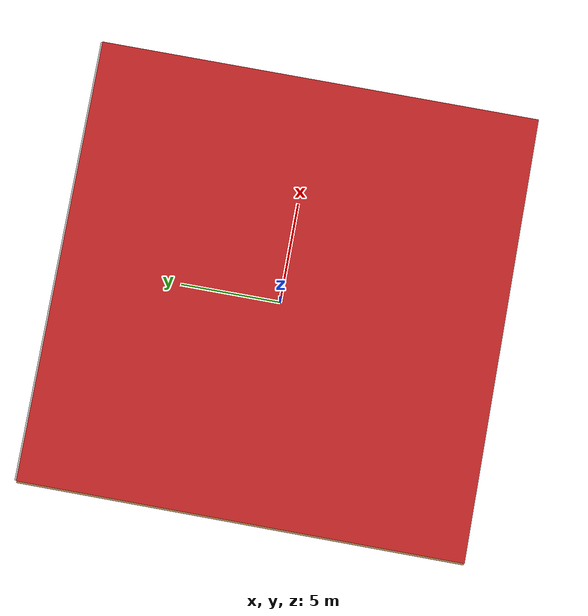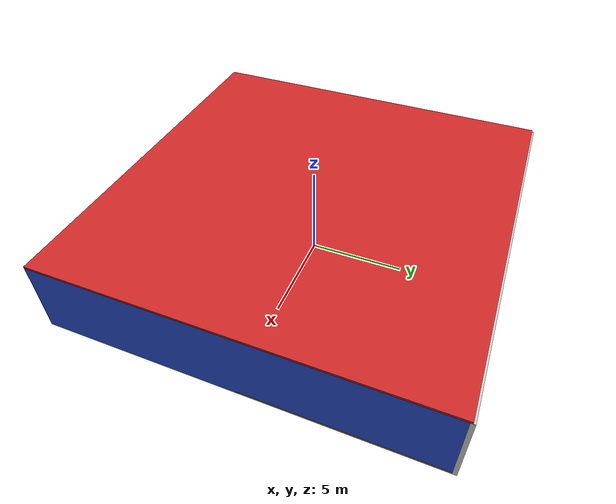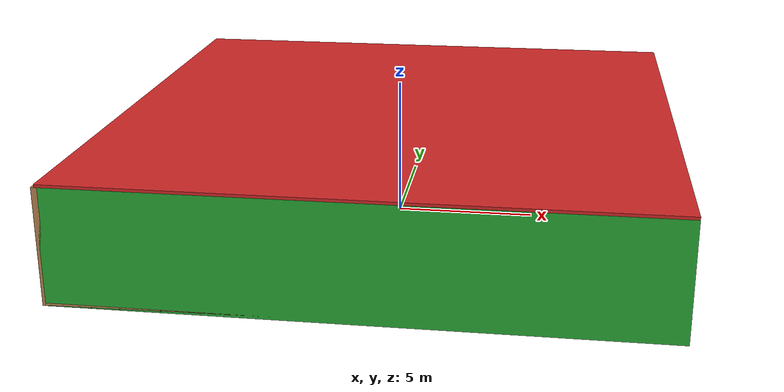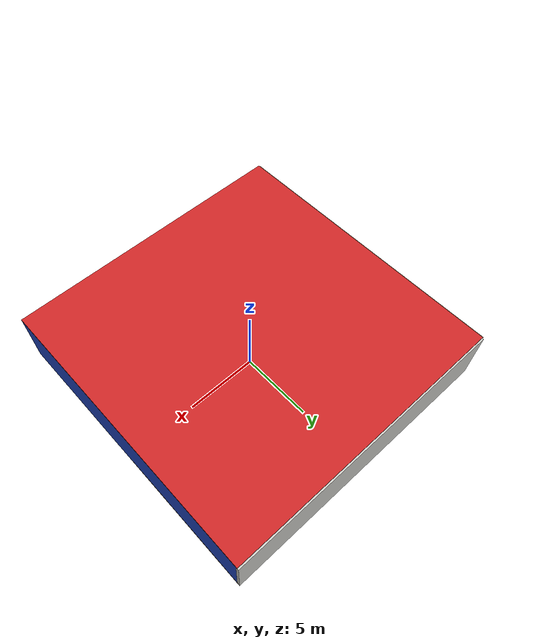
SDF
<sdf version="1.4">
 <world name="default">
  <physics type="ode">
   <max_step_size>0.001</max_step_size>
   <real_time_factor>1</real_time_factor>
   <real_time_update_rate>1000</real_time_update_rate>
   <gravity>0 0 -9.8</gravity>
  </physics>
  <scene><ambient>0.4 0.4 0.4 1</ambient><background>0.7 0.7 0.7 1</background><shadows>1</shadows></scene>
  <model name="Surrounding">
   <static>1</static>
   <link name="Ceiling">
    <collision name="Ceiling_Collision"><geometry><box><size>20 20 0.1</size></box></geometry></collision>
    <visual name="Ceiling_Visual">
     <geometry><box><size>20 20 0.1</size></box></geometry>
     <material>
      <script><uri>file://media/materials/scripts/gazebo.material</uri><name>Gazebo/RedBright</name></script>
     </material>
    </visual>
    <pose>0 0 4.05 0 0 0</pose>
   </link>
   <link name="Wall_South">
    <collision name="Wall_South_Collision">
     <geometry><box><size>20 0 4</size></box></geometry>
     <pose>0 0 2 0 -0 0</pose>
    </collision>
    <visual name="Wall_South_Visual">
     <pose>0 0 2 0 -0 0</pose>
     <geometry><box><size>20 0 4</size></box></geometry>
     <material>
      <script><uri>file://media/materials/scripts/gazebo.material</uri><name>Gazebo/GreenGlow</name></script>
     </material>
    </visual>
    <velocity_decay><linear>0</linear><angular>0</angular></velocity_decay>
    <pose>0 -10 0 0 -0 0</pose>
   </link>
   <link name="Wall_East">
    <collision name="Wall_21_Collision">
     <geometry><box><size>20 0 4</size></box></geometry>
     <pose>0 0 2 0 -0 0</pose>
    </collision>
    <visual name="Wall_21_Visual">
     <pose>0 0 2 0 -0 0</pose>
     <geometry><box><size>20 0 4</size></box></geometry>
     <material>
      <script><uri>file://media/materials/scripts/gazebo.material</uri><name>Gazebo/Blue</name></script>
     </material>
    </visual>
    <velocity_decay><linear>0</linear><angular>0</angular></velocity_decay>
    <pose>10 0 0 0 -0 1.5708</pose>
   </link>
   <link name="Wall_North">
    <collision name="Wall_22_Collision">
     <geometry><box><size>20 0.2 4</size></box></geometry>
     <pose>0 0 2 0 -0 0</pose>
    </collision>
    <visual name="Wall_22_Visual">
     <pose>0 0 2 0 -0 0</pose>
     <geometry><box><size>20 0.2 4</size></box></geometry>
     <material>
      <script><uri>file://media/materials/scripts/gazebo.material</uri><name>Gazebo/CeilingTiled</name></script>
     </material>
    </visual>
    <velocity_decay><linear>0</linear><angular>0</angular></velocity_decay>
    <pose>0 10 0 0 -0 0</pose>
   </link>
   <link name="Wall_West">
    <collision name="Wall_23_Collision">
     <geometry><box><size>20 0.2 4</size></box></geometry>
     <pose>0 0 2 0 -0 0</pose>
    </collision>
    <visual name="Wall_23_Visual">
     <pose>0 0 2 0 -0 0</pose>
     <geometry><box><size>20 0.2 4</size></box></geometry>
     <material>
      <script><uri>file://media/materials/scripts/gazebo.material</uri><name>Gazebo/Wood</name></script>
     </material>
    </visual>
    <velocity_decay><linear>0</linear><angular>0</angular></velocity_decay>
    <pose>-10 0 0 0 0 -1.5708</pose>
   </link>
   <link name="Ground_link">
    <collision name="collision">
     <pose>0 0 .05 0 -0 0</pose>
     <geometry><box><size>20 20 0.1</size></box></geometry>
    </collision>
    <visual name="visual">
     <pose>0 0 .05 0 -0 0</pose>
     <geometry><box><size>20 20 0.1</size></box></geometry>
     <material>
      <script><uri>file://media/materials/scripts/gazebo.material</uri><name>Gazebo/Wood</name></script>
     </material>
    </visual>
   </link>
   <static>1</static>
  </model>
  <spherical_coordinates>
   <surface_model>EARTH_WGS84</surface_model>
   <latitude_deg>0</latitude_deg>
   <longitude_deg>0</longitude_deg>
   <elevation>0</elevation>
   <heading_deg>0</heading_deg>
  </spherical_coordinates>
  <light name="lightball_0" type="diffuse">
   <diffuse>0.8 0.8 0.8 1</diffuse>
   <specular>0.2 0.2 0.2 1</specular>
   <attenuation>
    <range>100</range>
    <constant>0.7</constant>
    <linear>0.01</linear>
    <quadratic>0.001</quadratic>
   </attenuation>
   <direction>-0.5 0.1 -0.9</direction>
   <pose>4.53875497719 -1.4235948038 1.99735840621 0 0 0</pose>
  </light>
  <light name="lightball_1" type="diffuse">
   <diffuse>0.8 0.8 0.8 1</diffuse>
   <specular>0.2 0.2 0.2 1</specular>
   <attenuation>
    <range>100</range>
    <constant>0.7</constant>
    <linear>0.01</linear>
    <quadratic>0.001</quadratic>
   </attenuation>
   <direction>-0.5 0.1 -0.9</direction>
   <pose>3.54846006238 -3.46220799584 3.84398822171 0 0 0</pose>
  </light>
  <light name="lightball_2" type="diffuse">
   <diffuse>0.8 0.8 0.8 1</diffuse>
   <specular>0.2 0.2 0.2 1</specular>
   <attenuation>
    <range>100</range>
    <constant>0.7</constant>
    <linear>0.01</linear>
    <quadratic>0.001</quadratic>
   </attenuation>
   <direction>-0.5 0.1 -0.9</direction>
   <pose>-1.34077744805 9.36978421098 3.74435826245 0 0 0</pose>
  </light>
  <light name="lightball_3" type="diffuse">
   <diffuse>0.8 0.8 0.8 1</diffuse>
   <specular>0.2 0.2 0.2 1</specular>
   <attenuation>
    <range>100</range>
    <constant>0.7</constant>
    <linear>0.01</linear>
    <quadratic>0.001</quadratic>
   </attenuation>
   <direction>-0.5 0.1 -0.9</direction>
   <pose>-9.01485144188 8.39949624736 2.07612404784 0 0 0</pose>
  </light>
  <light name="lightball_4" type="diffuse">
   <diffuse>0.8 0.8 0.8 1</diffuse>
   <specular>0.2 0.2 0.2 1</specular>
   <attenuation>
    <range>100</range>
    <constant>0.7</constant>
    <linear>0.01</linear>
    <quadratic>0.001</quadratic>
   </attenuation>
   <direction>-0.5 0.1 -0.9</direction>
   <pose>-5.60245816035 2.69508813705 0.542305245801 0 0 0</pose>
  </light>
  <light name="lightball_5" type="diffuse">
   <diffuse>0.8 0.8 0.8 1</diffuse>
   <specular>0.2 0.2 0.2 1</specular>
   <attenuation>
    <range>100</range>
    <constant>0.7</constant>
    <linear>0.01</linear>
    <quadratic>0.001</quadratic>
   </attenuation>
   <direction>-0.5 0.1 -0.9</direction>
   <pose>-9.08479587113 -7.78376183666 2.24198532246 0 0 0</pose>
  </light>
  <light name="lightball_6" type="diffuse">
   <diffuse>0.8 0.8 0.8 1</diffuse>
   <specular>0.2 0.2 0.2 1</specular>
   <attenuation>
    <range>100</range>
    <constant>0.7</constant>
    <linear>0.01</linear>
    <quadratic>0.001</quadratic>
   </attenuation>
   <direction>-0.5 0.1 -0.9</direction>
   <pose>-5.81029001618 7.60461140914 3.53756879013 0 0 0</pose>
  </light>
  <light name="lightball_7" type="diffuse">
   <diffuse>0.8 0.8 0.8 1</diffuse>
   <specular>0.2 0.2 0.2 1</specular>
   <attenuation>
    <range>100</range>
    <constant>0.7</constant>
    <linear>0.01</linear>
    <quadratic>0.001</quadratic>
   </attenuation>
   <direction>-0.5 0.1 -0.9</direction>
   <pose>-7.35255622819 4.23463827079 2.58947748322 0 0 0</pose>
  </light>
  <include>
   <uri>model://construction_cone</uri>
   <pose>-7.55392034197 7.9107217981 0 0 0 1.24978272276</pose>
  </include>
  <include>
   <uri>model://robocup_3Dsim_goal</uri>
   <pose>-5.44180887895 6.82438532273 0 0 0 0.0448948866324</pose>
  </include>
  <include><uri>model://cabinet</uri><pose>2.64971363698 -3.98531982603 0 0 0 2.61646070227</pose></include>
  <include><uri>model://table</uri><pose>0.819767123782 0.753927460638 0 0 0 2.35865444424</pose></include>
  <include>
   <uri>model://robocup_3Dsim_goal</uri>
   <pose>3.63132068837 -7.63245933901 0 0 0 1.94314052997</pose>
  </include>
  <include>
   <uri>model://construction_cone</uri>
   <pose>5.11617000804 7.95371654245 0 0 0 2.39410545389</pose>
  </include>
  <include>
   <uri>model://textured_shapes</uri>
   <pose>8.40783230335 -6.85558503554 0 0 0 0.433674370086</pose>
  </include>
 </world>
</sdf>

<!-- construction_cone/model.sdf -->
<sdf version="1.5">
  <model name="Construction Cone">
    <link name="link">
      <collision name="collision">
        <geometry>
          <mesh>
            <scale>10 10 10</scale>
            <uri>file://isr-testbed/construction_cone/meshes/construction_cone.dae</uri>
          </mesh>
        </geometry>
      </collision>
      <visual name="visual">
        <geometry>
          <mesh>
            <scale>10 10 10</scale>
            <uri>file://isr-testbed/construction_cone/meshes/construction_cone.dae</uri>
          </mesh>
        </geometry>
      </visual>
    </link>
  </model>
</sdf>

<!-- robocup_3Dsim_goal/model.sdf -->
<sdf version="1.5">
  <model name="robocup_3d_goal">
    <static>true</static>
    <link name="left_post">
      <pose>0 1.05 0.45 0 0 0</pose>
      <collision name="collision">
        <geometry>
          <cylinder>
            <radius>0.05</radius>
            <length>0.9</length>
          </cylinder>
        </geometry>
      </collision>
      <visual name="visual">
        <geometry>
          <cylinder>
            <radius>0.05</radius>
            <length>0.9</length>
          </cylinder>
        </geometry>
        <material>
          <script>
            <uri>file://media/materials/scripts/gazebo.material</uri>
            <name>Gazebo/ZincYellow</name>
          </script>
        </material>
      </visual>
    </link>
    <link name="left_support_horiz_lower">
      <pose>0.30 1.05 0.01 0 0 0</pose>
      <collision name="collision">
        <geometry>
          <box>
            <size>0.50 0.02 0.02</size>
          </box>
        </geometry>
      </collision>
      <visual name="visual">
        <geometry>
          <box>
            <size>0.50 0.02 0.02</size>
          </box>
        </geometry>
        <material>
          <script>
            <uri>file://media/materials/scripts/gazebo.material</uri>
            <name>Gazebo/White</name>
          </script>
        </material>
      </visual>
    </link>
    <link name="left_support_horiz_upper">
      <pose>0.30 1.05 0.79 0 0 0</pose>
      <collision name="collision">
        <geometry>
          <box>
            <size>0.50 0.02 0.02</size>
          </box>
        </geometry>
      </collision>
      <visual name="visual">
        <geometry>
          <box>
            <size>0.50 0.02 0.02</size>
          </box>
        </geometry>
        <material>
          <script>
            <uri>file://media/materials/scripts/gazebo.material</uri>
            <name>Gazebo/White</name>
          </script>
        </material>
      </visual>
    </link>
    <link name="left_support_vertical">
      <pose>0.56 1.05 0.4 0 1.5708 0</pose>
      <collision name="collision">
        <geometry>
          <box>
            <size>0.80 0.02 0.02</size>
          </box>
        </geometry>
      </collision>
      <visual name="visual">
        <geometry>
          <box>
            <size>0.80 0.02 0.02</size>
          </box>
        </geometry>
        <material>
          <script>
            <uri>file://media/materials/scripts/gazebo.material</uri>
            <name>Gazebo/White</name>
          </script>
        </material>
      </visual>
    </link>
    <link name="right_support_horiz_lower">
      <pose>0.30 -1.05 0.01 0 0 0</pose>
      <collision name="collision">
        <geometry>
          <box>
            <size>0.50 0.02 0.02</size>
          </box>
        </geometry>
      </collision>
      <visual name="visual">
        <geometry>
          <box>
            <size>0.50 0.02 0.02</size>
          </box>
        </geometry>
        <material>
          <script>
            <uri>file://media/materials/scripts/gazebo.material</uri>
            <name>Gazebo/White</name>
          </script>
        </material>
      </visual>
    </link>
    <link name="right_support_horiz_upper">
      <pose>0.30 -1.05 0.79 0 0 0</pose>
      <collision name="collision">
        <geometry>
          <box>
            <size>0.50 0.02 0.02</size>
          </box>
        </geometry>
      </collision>
      <visual name="visual">
        <geometry>
          <box>
            <size>0.50 0.02 0.02</size>
          </box>
        </geometry>
        <material>
          <script>
            <uri>file://media/materials/scripts/gazebo.material</uri>
            <name>Gazebo/White</name>
          </script>
        </material>
      </visual>
    </link>
    <link name="right_support_vertical">
      <pose>0.56 -1.05 0.4 0 1.5708 0</pose>
      <collision name="collision">
        <geometry>
          <box>
            <size>0.80 0.02 0.02</size>
          </box>
        </geometry>
      </collision>
      <visual name="visual">
        <geometry>
          <box>
            <size>0.80 0.02 0.02</size>
          </box>
        </geometry>
        <material>
          <script>
            <uri>file://media/materials/scripts/gazebo.material</uri>
            <name>Gazebo/White</name>
          </script>
        </material>
      </visual>
    </link>
    <link name="center_support_horiz_lower">
      <pose>0.56 0 0.01 0 1.5708 0</pose>
      <collision name="collision">
        <geometry>
          <box>
            <size>0.02 2.08 0.02</size>
          </box>
        </geometry>
      </collision>
      <visual name="visual">
        <geometry>
          <box>
            <size>0.02 2.08 0.02</size>
          </box>
        </geometry>
        <material>
          <script>
            <uri>file://media/materials/scripts/gazebo.material</uri>
            <name>Gazebo/White</name>
          </script>
        </material>
      </visual>
    </link>
    <link name="center_support_horiz_upper">
      <pose>0.56 0 0.79 0 1.5708 0</pose>
      <collision name="collision">
        <geometry>
          <box>
            <size>0.02 2.08 0.02</size>
          </box>
        </geometry>
      </collision>
      <visual name="visual">
        <geometry>
          <box>
            <size>0.02 2.08 0.02</size>
          </box>
        </geometry>
        <material>
          <script>
            <uri>file://media/materials/scripts/gazebo.material</uri>
            <name>Gazebo/White</name>
          </script>
        </material>
      </visual>
    </link>
    <link name="right_post">
      <pose>0 -1.05 0.45 0 0 0</pose>
      <collision name="collision">
        <geometry>
          <cylinder>
            <radius>0.05</radius>
            <length>0.9</length>
          </cylinder>
        </geometry>
      </collision>
      <visual name="visual">
        <geometry>
          <cylinder>
            <radius>0.05</radius>
            <length>0.9</length>
          </cylinder>
        </geometry>
        <material>
          <script>
            <uri>file://media/materials/scripts/gazebo.material</uri>
            <name>Gazebo/ZincYellow</name>
          </script>
        </material>
      </visual>
    </link>
    <link name="crossbar">
      <pose>0 0 0.85 1.57 1.57 0</pose>
      <collision name="collision">
        <geometry>
          <cylinder>
            <radius>0.05</radius>
            <length>2.0</length>
          </cylinder>
        </geometry>
      </collision>
      <visual name="visual">
        <geometry>
          <cylinder>
            <radius>0.05</radius>
            <length>2.0</length>
          </cylinder>
        </geometry>
        <material>
          <script>
            <uri>file://media/materials/scripts/gazebo.material</uri>
            <name>Gazebo/ZincYellow</name>
          </script>
        </material>
      </visual>
    </link>
    <link name="center_net">
      <pose>0.56 0 0.40 0 0 0</pose>
      <collision name="collision">
        <geometry>
          <box>
            <size>0.01 2.1 0.80</size>
          </box>
        </geometry>
      </collision>
      <visual name="visual">
        <geometry>
          <box>
            <size>0.01 2.1 0.80</size>
          </box>
        </geometry>
        <material>
          <script>
            <uri>model://../model_source/models/robocup09_spl_field/materials/scripts/</uri>
            <uri>model://../model_source/models/robocup09_spl_field/materials/textures/</uri>
            <name>RoboCup/Net</name>
          </script>
        </material>
      </visual>
    </link>
    <link name="left_net">
      <pose>0.30 1.05 0.40 0 0 0</pose>
      <collision name="collision">
        <geometry>
          <box>
            <size>0.50 0.01 0.76</size>
          </box>
        </geometry>
      </collision>
      <visual name="visual">
        <geometry>
          <box>
            <size>0.50 0.01 0.76</size>
          </box>
        </geometry>
        <material>
          <script>
            <uri>model://../model_source/models/robocup09_spl_field/materials/scripts/</uri>
            <uri>model://../model_source/models/robocup09_spl_field/materials/textures/</uri>
            <name>RoboCup/Net</name>
          </script>
        </material>
      </visual>
    </link>
    <link name="right_net">
      <pose>0.30 -1.05 0.40 0 0 0</pose>
      <collision name="collision">
        <geometry>
          <box>
            <size>0.50 0.01 0.76</size>
          </box>
        </geometry>
      </collision>
      <visual name="visual">
        <geometry>
          <box>
            <size>0.50 0.01 0.76</size>
          </box>
        </geometry>
        <material>
          <script>
            <uri>model://../model_source/models/robocup09_spl_field/materials/scripts/</uri>
            <uri>model://../model_source/models/robocup09_spl_field/materials/textures/</uri>
            <name>RoboCup/Net</name>
          </script>
        </material>
      </visual>
    </link>
  </model>
</sdf>

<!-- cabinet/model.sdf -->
<sdf version="1.5">
  <model name="cabinet">
    <static>true</static>
    <link name="cabinet_bottom_plate">
      <inertial>
        <pose>0 0 -1 0 0 0</pose>
        <inertia>
          <ixx>2.050000</ixx>
          <ixy>0</ixy>
          <ixz>0</ixz>
          <iyy>2.050000</iyy>
          <iyz>0</iyz>
          <izz>2.050000</izz>
        </inertia>
        <mass>25.000000</mass>
      </inertial>
      <collision name="cabinet_bottom_plate_geom">
        <pose>0 0 0.010000 0 0 0</pose>
        <geometry>
          <box>
            <size>0.450000 0.450000 0.020000</size>
          </box>
        </geometry>
      </collision>
      <visual name="cabinet_bottom_plate_geom_visual">
        <pose>0 0 0.010000 0 0 0</pose>
        <geometry>
          <box>
            <size>0.450000 0.450000 0.020000</size>
          </box>
        </geometry>
        <material>
          <script>
            <uri>model://media/materials/scripts/gazebo.material</uri>
            <name>Gazebo/Wood</name>
          </script>
        </material>
      </visual>
      <collision name="cabinet_bottom_plate_geom_cabinet_back_plate">
        <pose>0.235000 0 0.510000 0 0 0</pose>
        <geometry>
          <box>
            <size>0.020000 0.450000 1.020000</size>
          </box>
        </geometry>
      </collision>
      <visual name="cabinet_bottom_plate_geom_cabinet_back_plate_visual">
        <pose>0.235000 0 0.510000 0 0 0</pose>
        <geometry>
          <box>
            <size>0.020000 0.450000 1.020000</size>
          </box>
        </geometry>
        <material>
          <script>
            <uri>model://media/materials/scripts/gazebo.material</uri>
            <name>Gazebo/Wood</name>
          </script>
        </material>
      </visual>
      <collision name="cabinet_bottom_plate_geom_cabinet_left_plate">
        <pose>0 0.235000 0.510000 0 0 0</pose>
        <geometry>
          <box>
            <size>0.450000 0.020000 1.020000</size>
          </box>
        </geometry>
      </collision>
      <visual name="cabinet_bottom_plate_geom_cabinet_left_plate_visual">
        <pose>0 0.235000 0.510000 0 0 0</pose>
        <geometry>
          <box>
            <size>0.450000 0.020000 1.020000</size>
          </box>
        </geometry>
        <material>
          <script>
            <uri>model://media/materials/scripts/gazebo.material</uri>
            <name>Gazebo/Wood</name>
          </script>
        </material>
      </visual>
      <collision name="cabinet_bottom_plate_geom_cabinet_middle_plate">
        <pose>0 0 0.510000 0 0 0</pose>
        <geometry>
          <box>
            <size>0.450000 0.450000 0.020000</size>
          </box>
        </geometry>
      </collision>
      <visual name="cabinet_bottom_plate_geom_cabinet_middle_plate_visual">
        <pose>0 0 0.510000 0 0 0</pose>
        <geometry>
          <box>
            <size>0.450000 0.450000 0.020000</size>
          </box>
        </geometry>
        <material>
          <script>
            <uri>model://media/materials/scripts/gazebo.material</uri>
            <name>Gazebo/Wood</name>
          </script>
        </material>
      </visual>
      <collision name="cabinet_bottom_plate_geom_cabinet_right_plate">
        <pose>0 -0.235000 0.510000 0 0 0</pose>
        <geometry>
          <box>
            <size>0.450000 0.020000 1.020000</size>
          </box>
        </geometry>
      </collision>
      <visual name="cabinet_bottom_plate_geom_cabinet_right_plate_visual">
        <pose>0 -0.235000 0.510000 0 0 0</pose>
        <geometry>
          <box>
            <size>0.450000 0.020000 1.020000</size>
          </box>
        </geometry>
        <material>
          <script>
            <uri>model://media/materials/scripts/gazebo.material</uri>
            <name>Gazebo/Wood</name>
          </script>
        </material>
      </visual>
      <collision name="cabinet_bottom_plate_geom_cabinet_top_plate">
        <pose>0 0 1.010000 0 0 0</pose>
        <geometry>
          <box>
            <size>0.450000 0.450000 0.020000</size>
          </box>
        </geometry>
      </collision>
      <visual name="cabinet_bottom_plate_geom_cabinet_top_plate_visual">
        <pose>0 0 1.010000 0 0 0</pose>
        <geometry>
          <box>
            <size>0.450000 0.450000 0.020000</size>
          </box>
        </geometry>
        <material>
          <script>
            <uri>model://media/materials/scripts/gazebo.material</uri>
            <name>Gazebo/Wood</name>
          </script>
        </material>
      </visual>
    </link>
  </model>
</sdf>

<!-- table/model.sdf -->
<sdf version="1.5">
  <model name="table">
    <static>true</static>
    <link name="link">
      <collision name="surface">
        <pose>0 0 1.0 0 0 0</pose>
        <geometry>
          <box>
            <size>1.5 0.8 0.03</size>
          </box>
        </geometry>
        <surface>
          <friction>
            <ode>
              <mu>0.6</mu>
              <mu2>0.6</mu2>
            </ode>
          </friction>
        </surface>
      </collision>
      <visual name="visual1">
        <pose>0 0 1.0 0 0 0</pose>
        <geometry>
          <box>
            <size>1.5 0.8 0.03</size>
          </box>
        </geometry>
        <material>
          <script>
            <uri>model://media/materials/scripts/gazebo.material</uri>
            <name>Gazebo/Wood</name>
          </script>
        </material>
      </visual>
      <collision name="front_left_leg">
        <pose>0.68 0.38 0.5 0 0 0</pose>
        <geometry>
          <cylinder>
            <radius>0.02</radius>
            <length>1.0</length>
          </cylinder>
        </geometry>
      </collision>
      <visual name="front_left_leg">
        <pose>0.68 0.38 0.5 0 0 0</pose>
        <geometry>
          <cylinder>
            <radius>0.02</radius>
            <length>1.0</length>
          </cylinder>
        </geometry>
        <material>
          <script>
            <uri>model://media/materials/scripts/gazebo.material</uri>
            <name>Gazebo/Grey</name>
          </script>
        </material>
      </visual>
      <collision name="front_right_leg">
        <pose>0.68 -0.38 0.5 0 0 0</pose>
        <geometry>
          <cylinder>
            <radius>0.02</radius>
            <length>1.0</length>
          </cylinder>
        </geometry>
      </collision>
      <visual name="front_right_leg">
        <pose>0.68 -0.38 0.5 0 0 0</pose>
        <geometry>
          <cylinder>
            <radius>0.02</radius>
            <length>1.0</length>
          </cylinder>
        </geometry>
        <material>
          <script>
            <uri>model://media/materials/scripts/gazebo.material</uri>
            <name>Gazebo/Grey</name>
          </script>
        </material>
      </visual>
      <collision name="back_right_leg">
        <pose>-0.68 -0.38 0.5 0 0 0</pose>
        <geometry>
          <cylinder>
            <radius>0.02</radius>
            <length>1.0</length>
          </cylinder>
        </geometry>
      </collision>
      <visual name="back_right_leg">
        <pose>-0.68 -0.38 0.5 0 0 0</pose>
        <geometry>
          <cylinder>
            <radius>0.02</radius>
            <length>1.0</length>
          </cylinder>
        </geometry>
        <material>
          <script>
            <uri>model://media/materials/scripts/gazebo.material</uri>
            <name>Gazebo/Grey</name>
          </script>
        </material>
      </visual>
      <collision name="back_left_leg">
        <pose>-0.68 0.38 0.5 0 0 0</pose>
        <geometry>
          <cylinder>
            <radius>0.02</radius>
            <length>1.0</length>
          </cylinder>
        </geometry>
      </collision>
      <visual name="back_left_leg">
        <pose>-0.68 0.38 0.5 0 0 0</pose>
        <geometry>
          <cylinder>
            <radius>0.02</radius>
            <length>1.0</length>
          </cylinder>
        </geometry>
        <material>
          <script>
            <uri>model://media/materials/scripts/gazebo.material</uri>
            <name>Gazebo/Grey</name>
          </script>
        </material>
      </visual>
    </link>
  </model>
</sdf>

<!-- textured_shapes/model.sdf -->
<sdf version="1.6">
  <model name="textured_shapes">
    <pose>0 0 0.5 0 0 0</pose>
    <link name="box">
      <pose>0 -1.5 0 0 0 0</pose>
      <collision name="collision">
        <geometry>
          <box>
            <size>1 1 1</size>
          </box>
        </geometry>
      </collision>
      <visual name="visual">
        <geometry>
          <box>
            <size>1 1 1</size>
          </box>
        </geometry>
        <material>
          <script>
            <uri>model://../model_source/models/textured_shapes/materials/scripts</uri>
            <uri>model://../model_source/models/textured_shapes/materials/textures</uri>
            <name>TexturedShape/Squares</name>
          </script>
        </material>
      </visual>
    </link>
    <link name="sphere">
      <collision name="collision">
        <geometry>
          <sphere>
            <radius>0.5</radius>
          </sphere>
        </geometry>
      </collision>
      <visual name="visual">
        <geometry>
          <sphere>
            <radius>0.5</radius>
          </sphere>
        </geometry>
        <material>
          <script>
            <uri>model://../model_source/models/textured_shapes/materials/scripts</uri>
            <uri>model://../model_source/models/textured_shapes/materials/textures</uri>
            <name>TexturedShape/Squares</name>
          </script>
        </material>
      </visual>
    </link>
    <link name="cylinder">
      <pose>0 1.5 0 0 0 0</pose>
      <collision name="collision">
        <geometry>
          <cylinder>
            <radius>0.5</radius>
            <length>1</length>
          </cylinder>
        </geometry>
      </collision>
      <visual name="visual">
        <geometry>
          <cylinder>
            <radius>0.5</radius>
            <length>1</length>
          </cylinder>
        </geometry>
        <material>
          <script>
            <uri>model://../model_source/models/textured_shapes/materials/scripts</uri>
            <uri>model://../model_source/models/textured_shapes/materials/textures</uri>
            <name>TexturedShape/Squares</name>
          </script>
        </material>
      </visual>
    </link>
  </model>
</sdf>
